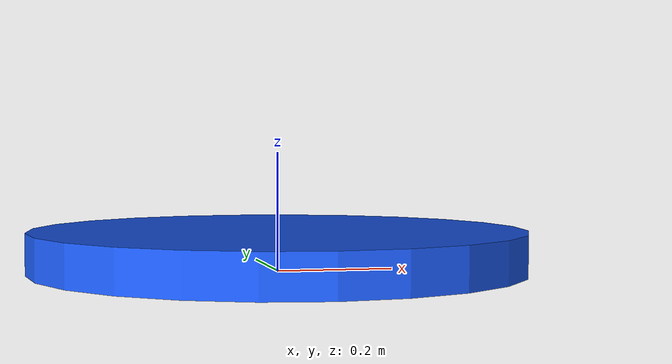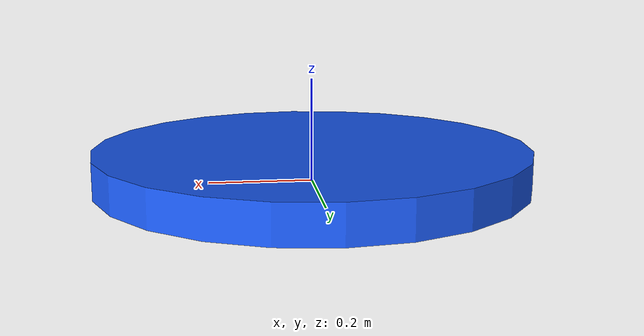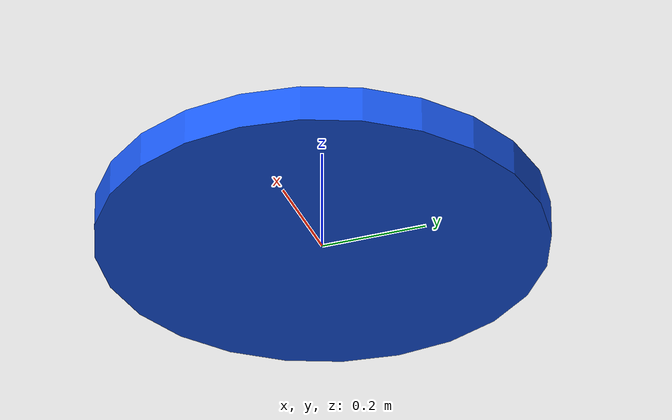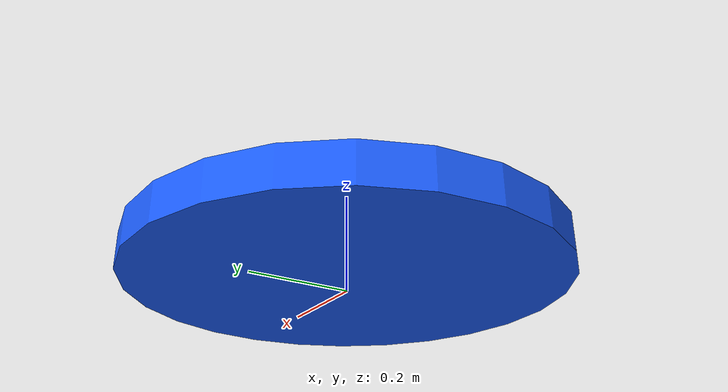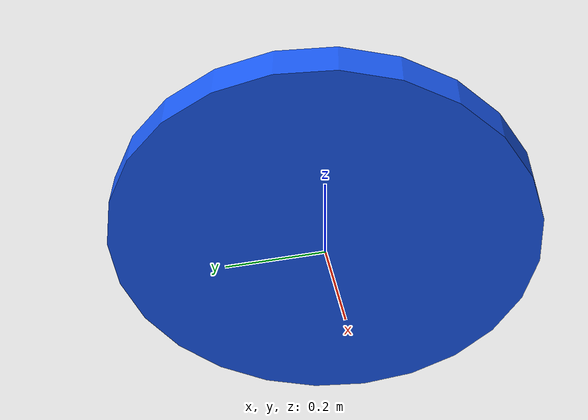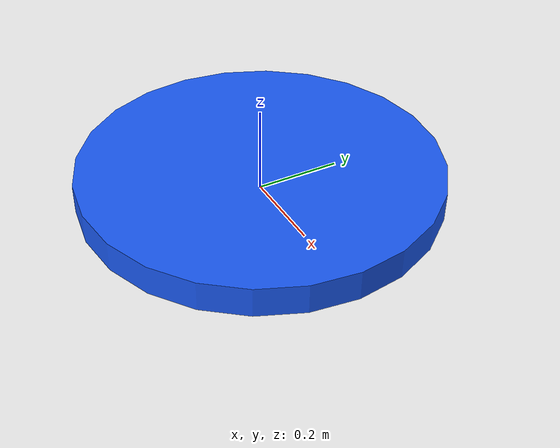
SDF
<?xml version="1.0"?>
<sdf version="1.9">
  <model name="tecnofest_task_point_blue">
    <static>true</static>
    <link name="marker">
      <visual name="blue_disk">
        <pose>0 0 0.035 0 0 0</pose>
        <geometry>
          <cylinder>
            <radius>0.42</radius>
            <length>0.07</length>
          </cylinder>
        </geometry>
        <material>
          <ambient>0.05 0.24 0.75 1</ambient>
          <diffuse>0.10 0.35 0.95 1</diffuse>
          <specular>0.15 0.20 0.35 1</specular>
        </material>
      </visual>
    </link>
  </model>
</sdf>
